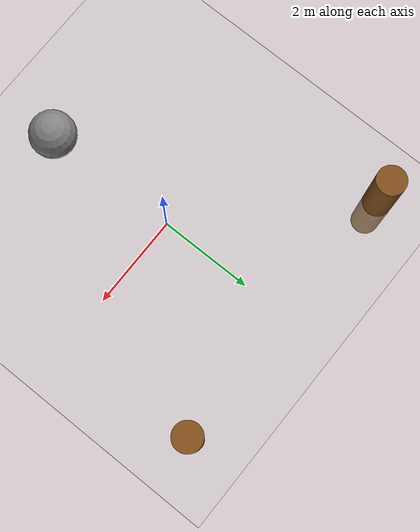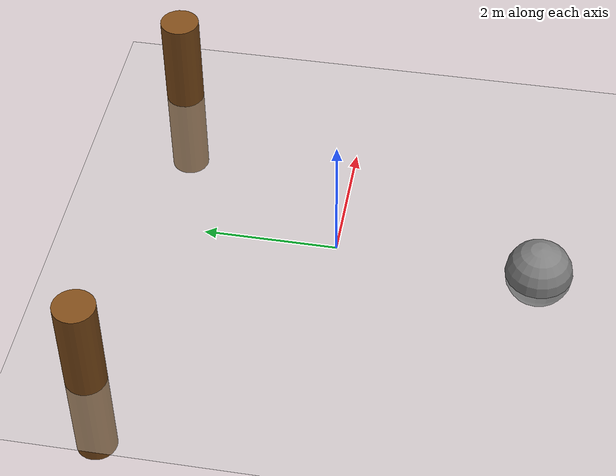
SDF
<?xml version="1.0"?>
<sdf version="1.6">
  <world name="outdoor_world">

    <!-- Physics settings -->
    <physics type="ode">
      <real_time_update_rate>1000.0</real_time_update_rate>
      <max_step_size>0.001</max_step_size>
      <real_time_factor>1</real_time_factor>
    </physics>

    <!-- A global light source -->
    <include>
      <uri>model://sun</uri>
    </include>

    <!-- A ground plane -->
    <include>
      <uri>model://ground_plane</uri>
    </include>

    <!-- Outdoor obstacles -->
    <model name="tree_1">
      <static>true</static>
      <pose>3 3 0 0 0 0</pose>
      <link name="link">
        <collision name="collision">
          <geometry>
            <cylinder>
              <radius>0.3</radius>
              <length>3</length>
            </cylinder>
          </geometry>
        </collision>
        <visual name="visual">
          <geometry>
            <cylinder>
              <radius>0.3</radius>
              <length>3</length>
            </cylinder>
          </geometry>
          <material>
            <ambient>0.5 0.3 0.1 1</ambient>
            <diffuse>0.5 0.3 0.1 1</diffuse>
          </material>
        </visual>
      </link>
    </model>

    <model name="tree_2">
      <static>true</static>
      <pose>-3 3 0 0 0 0</pose>
      <link name="link">
        <collision name="collision">
          <geometry>
            <cylinder>
              <radius>0.3</radius>
              <length>3</length>
            </cylinder>
          </geometry>
        </collision>
        <visual name="visual">
          <geometry>
            <cylinder>
              <radius>0.3</radius>
              <length>3</length>
            </cylinder>
          </geometry>
          <material>
            <ambient>0.5 0.3 0.1 1</ambient>
            <diffuse>0.5 0.3 0.1 1</diffuse>
          </material>
        </visual>
      </link>
    </model>

    <model name="rock_1">
      <static>true</static>
      <pose>0 -3 0 0 0 0</pose>
      <link name="link">
        <collision name="collision">
          <geometry>
            <sphere>
              <radius>0.5</radius>
            </sphere>
          </geometry>
        </collision>
        <visual name="visual">
          <geometry>
            <sphere>
              <radius>0.5</radius>
            </sphere>
          </geometry>
          <material>
            <ambient>0.5 0.5 0.5 1</ambient>
            <diffuse>0.5 0.5 0.5 1</diffuse>
          </material>
        </visual>
      </link>
    </model>

  </world>
</sdf>
